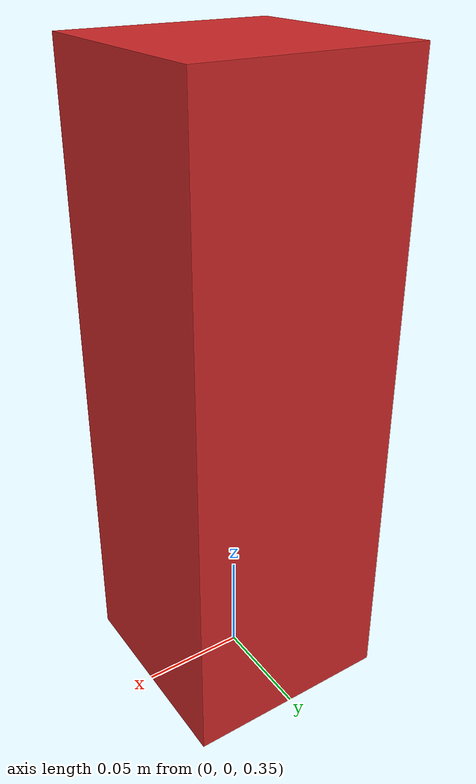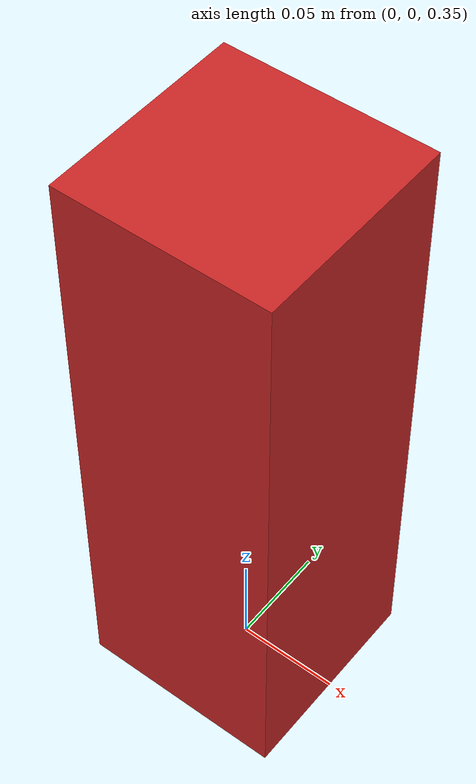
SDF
<?xml version='1.0'?>
<sdf version="1.4">
  <model name="book_model">
    <pose>0 0 0.5 0 0 0</pose>
    <static>true</static>
    <link name="link">
      <inertial>
        <mass>1.0</mass>
        <inertia>
          <ixx>0.01</ixx>
          <ixy>0.0</ixy>
          <ixz>0.0</ixz>
          <iyy>0.01</iyy>
          <iyz>0.0</iyz>
          <izz>0.01</izz>
        </inertia>
      </inertial>
      <collision name="collision">
        <geometry>
          <box>
            <size>0.1 0.1 0.3</size> <!-- Adjust the size to match a typical book -->
          </box>
        </geometry>
      </collision>
      <visual name="visual">
        <geometry>
          <box>
            <size>0.1 0.1 0.3</size> <!-- Adjust the size to match a typical book -->
          </box>
        </geometry>
        <material>
          <script>
            <uri>file://media/materials/scripts/gazebo.material</uri>
            <name>Gazebo/Red</name> <!-- You can adjust the color or use a texture -->
          </script>
        </material>
      </visual>
    </link>
  </model>
</sdf>
